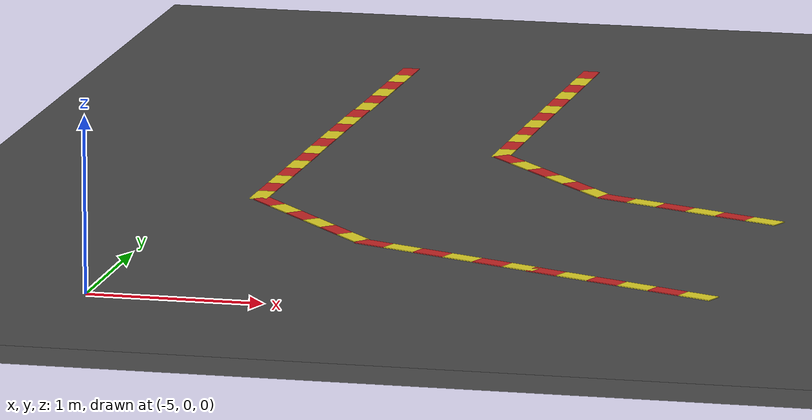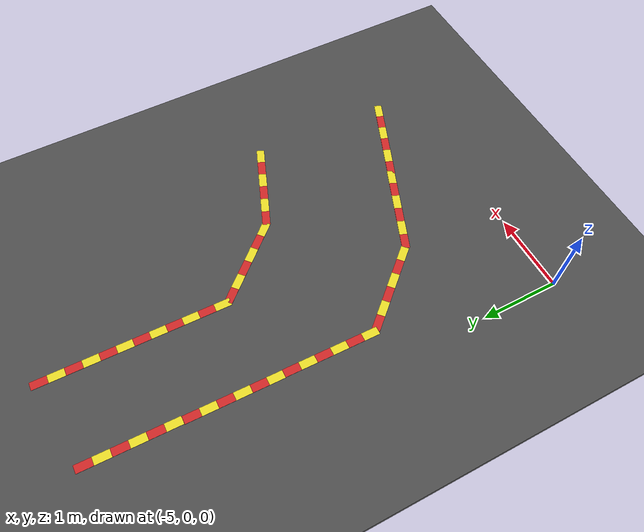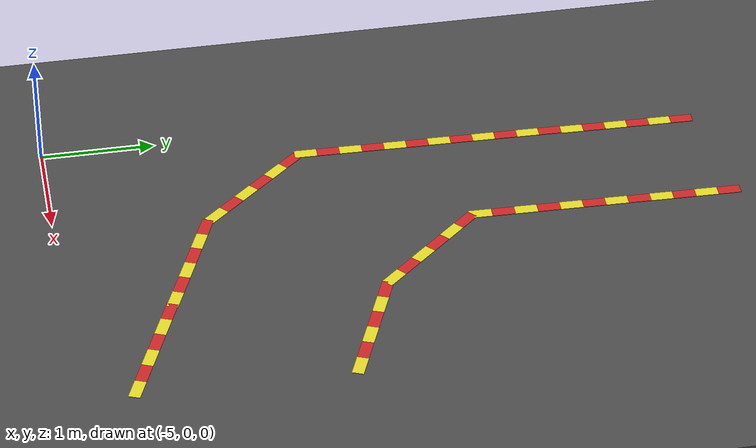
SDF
<sdf version="1.6">
 <world name="default">
  <model name="ground_plane">
   <static>1</static>
   <link name="link">
    <collision name="collision">
     <geometry><plane><normal>0 0 1</normal><size>40 40</size></plane></geometry>
     <surface><friction><ode><mu>100</mu><mu2>50</mu2></ode></friction></surface>
    </collision>
    <visual name="visual">
     <cast_shadows>0</cast_shadows>
     <geometry><plane><normal>0 0 1</normal><size>40 40</size></plane></geometry>
     <material>
      <script><uri>file://media/materials/scripts/gazebo.material</uri><name>Gazebo/Grey</name></script>
     </material>
    </visual>
    <velocity_decay><linear>0</linear><angular>0</angular></velocity_decay>
   </link>
  </model>
  <model name="asphalt_plane">
   <static>1</static>
   <link name="link">
    <collision name="collision"><geometry><box><size>40 40 0.1</size></box></geometry></collision>
    <visual name="visual">
     <cast_shadows>0</cast_shadows>
     <geometry><box><size>40 40 0.1</size></box></geometry>
     <material>
      <script>
       <uri>model://asphalt_plane/materials/scripts</uri>
       <uri>model://asphalt_plane/materials/textures</uri>
       <name>vrc/asphalt</name>
      </script>
     </material>
    </visual>
    <velocity_decay><linear>0</linear><angular>0</angular></velocity_decay>
   </link>
   <pose>0.433796 -0.497378 0 0 -0 0</pose>
  </model>
  <model name="DashLine_clone_clone_clone_12_clone_0">
   <link name="link">
    <inertial>
     <mass>1</mass>
     <inertia>
      <ixx>0.166667</ixx>
      <ixy>0</ixy>
      <ixz>0</ixz>
      <iyy>0.166667</iyy>
      <iyz>0</iyz>
      <izz>0.166667</izz>
     </inertia>
    </inertial>
    <gravity>0</gravity>
    <visual name="ModelPreview_3::link::visual_3">
     <geometry><box><size>0.2 0.1 0.01</size></box></geometry>
     <material>
      <script><name>Gazebo/Yellow</name><uri>file://media/materials/scripts/gazebo.material</uri></script>
      <shader type="vertex"><normal_map>__default__</normal_map></shader>
      <ambient>0.988 0.914 0.31 1</ambient>
      <diffuse>0.7 0.7 0.7 1</diffuse>
      <specular>0.01 0.01 0.01 1</specular>
      <emissive>0 0 0 1</emissive>
     </material>
     <pose>0.2 0 0 0 -0 0</pose>
    </visual>
    <visual name="ModelPreview_6::link::visual_5">
     <geometry><box><size>0.2 0.1 0.01</size></box></geometry>
     <material>
      <script><name>Gazebo/Yellow</name><uri>file://media/materials/scripts/gazebo.material</uri></script>
      <shader type="vertex"><normal_map>__default__</normal_map></shader>
      <ambient>0.988 0.914 0.31 1</ambient>
      <diffuse>0.7 0.7 0.7 1</diffuse>
      <specular>0.01 0.01 0.01 1</specular>
      <emissive>0 0 0 1</emissive>
     </material>
     <pose>0.6 0 0 0 -0 0</pose>
    </visual>
    <visual name="ModelPreview_3::link::visual_4">
     <geometry><box><size>0.2 0.1 0.01</size></box></geometry>
     <material>
      <script><name>Gazebo/Red</name><uri>file://media/materials/scripts/gazebo.material</uri></script>
      <shader type="vertex"><normal_map>__default__</normal_map></shader>
      <ambient>0.937 0.161 0.161 1</ambient>
      <diffuse>0.7 0.7 0.7 1</diffuse>
      <specular>0.01 0.01 0.01 1</specular>
      <emissive>0 0 0 1</emissive>
     </material>
     <pose>0.4 0 0 0 -0 0</pose>
    </visual>
    <visual name="ModelPreview_3::link::visual_2">
     <geometry><box><size>0.2 0.1 0.01</size></box></geometry>
     <material>
      <script><name>Gazebo/Red</name><uri>file://media/materials/scripts/gazebo.material</uri></script>
      <shader type="vertex"><normal_map>__default__</normal_map></shader>
      <ambient>0.937 0.161 0.161 1</ambient>
      <diffuse>0.7 0.7 0.7 1</diffuse>
      <specular>0.01 0.01 0.01 1</specular>
      <emissive>0 0 0 1</emissive>
     </material>
    </visual>
    <visual name="visual">
     <geometry><box><size>0.2 0.1 0.01</size></box></geometry>
     <material>
      <script><name>Gazebo/Red</name><uri>file://media/materials/scripts/gazebo.material</uri></script>
      <shader type="vertex"><normal_map>__default__</normal_map></shader>
      <ambient>0.8 0 0 1</ambient>
      <diffuse>0.7 0.7 0.7 1</diffuse>
      <specular>0.01 0.01 0.01 1</specular>
      <emissive>0 0 0 1</emissive>
     </material>
     <pose>-0.4 0 0 0 -0 0</pose>
    </visual>
    <visual name="ModelPreview_3::link::visual_1">
     <geometry><box><size>0.2 0.1 0.01</size></box></geometry>
     <material>
      <script><name>Gazebo/Yellow</name><uri>file://media/materials/scripts/gazebo.material</uri></script>
      <shader type="vertex"><normal_map>__default__</normal_map></shader>
      <ambient>0.988 0.914 0.31 1</ambient>
      <diffuse>0.7 0.7 0.7 1</diffuse>
      <specular>0.01 0.01 0.01 1</specular>
      <emissive>0 0 0 1</emissive>
     </material>
     <pose>-0.2 0 0 0 -0 0</pose>
    </visual>
   </link>
   <static>0</static>
   <pose>-2.23388 0.69833 0.05 0 0 -0.383062</pose>
  </model>
  <model name="DashLine_clone_clone_clone_12_clone_1">
   <link name="link">
    <inertial>
     <mass>1</mass>
     <inertia>
      <ixx>0.166667</ixx>
      <ixy>0</ixy>
      <ixz>0</ixz>
      <iyy>0.166667</iyy>
      <iyz>0</iyz>
      <izz>0.166667</izz>
     </inertia>
    </inertial>
    <gravity>0</gravity>
    <visual name="ModelPreview_3::link::visual_3">
     <geometry><box><size>0.2 0.1 0.01</size></box></geometry>
     <material>
      <script><name>Gazebo/Yellow</name><uri>file://media/materials/scripts/gazebo.material</uri></script>
      <shader type="vertex"><normal_map>__default__</normal_map></shader>
      <ambient>0.988 0.914 0.31 1</ambient>
      <diffuse>0.7 0.7 0.7 1</diffuse>
      <specular>0.01 0.01 0.01 1</specular>
      <emissive>0 0 0 1</emissive>
     </material>
     <pose>0.2 0 0 0 -0 0</pose>
    </visual>
    <visual name="ModelPreview_6::link::visual_5">
     <geometry><box><size>0.2 0.1 0.01</size></box></geometry>
     <material>
      <script><name>Gazebo/Yellow</name><uri>file://media/materials/scripts/gazebo.material</uri></script>
      <shader type="vertex"><normal_map>__default__</normal_map></shader>
      <ambient>0.988 0.914 0.31 1</ambient>
      <diffuse>0.7 0.7 0.7 1</diffuse>
      <specular>0.01 0.01 0.01 1</specular>
      <emissive>0 0 0 1</emissive>
     </material>
     <pose>0.6 0 0 0 -0 0</pose>
    </visual>
    <visual name="ModelPreview_3::link::visual_4">
     <geometry><box><size>0.2 0.1 0.01</size></box></geometry>
     <material>
      <script><name>Gazebo/Red</name><uri>file://media/materials/scripts/gazebo.material</uri></script>
      <shader type="vertex"><normal_map>__default__</normal_map></shader>
      <ambient>0.937 0.161 0.161 1</ambient>
      <diffuse>0.7 0.7 0.7 1</diffuse>
      <specular>0.01 0.01 0.01 1</specular>
      <emissive>0 0 0 1</emissive>
     </material>
     <pose>0.4 0 0 0 -0 0</pose>
    </visual>
    <visual name="ModelPreview_3::link::visual_2">
     <geometry><box><size>0.2 0.1 0.01</size></box></geometry>
     <material>
      <script><name>Gazebo/Red</name><uri>file://media/materials/scripts/gazebo.material</uri></script>
      <shader type="vertex"><normal_map>__default__</normal_map></shader>
      <ambient>0.937 0.161 0.161 1</ambient>
      <diffuse>0.7 0.7 0.7 1</diffuse>
      <specular>0.01 0.01 0.01 1</specular>
      <emissive>0 0 0 1</emissive>
     </material>
    </visual>
    <visual name="visual">
     <geometry><box><size>0.2 0.1 0.01</size></box></geometry>
     <material>
      <script><name>Gazebo/Red</name><uri>file://media/materials/scripts/gazebo.material</uri></script>
      <shader type="vertex"><normal_map>__default__</normal_map></shader>
      <ambient>0.8 0 0 1</ambient>
      <diffuse>0.7 0.7 0.7 1</diffuse>
      <specular>0.01 0.01 0.01 1</specular>
      <emissive>0 0 0 1</emissive>
     </material>
     <pose>-0.4 0 0 0 -0 0</pose>
    </visual>
    <visual name="ModelPreview_3::link::visual_1">
     <geometry><box><size>0.2 0.1 0.01</size></box></geometry>
     <material>
      <script><name>Gazebo/Yellow</name><uri>file://media/materials/scripts/gazebo.material</uri></script>
      <shader type="vertex"><normal_map>__default__</normal_map></shader>
      <ambient>0.988 0.914 0.31 1</ambient>
      <diffuse>0.7 0.7 0.7 1</diffuse>
      <specular>0.01 0.01 0.01 1</specular>
      <emissive>0 0 0 1</emissive>
     </material>
     <pose>-0.2 0 0 0 -0 0</pose>
    </visual>
   </link>
   <static>0</static>
   <pose>-3.31071 1.13876 0.05 0 0 -0.383062</pose>
  </model>
  <model name="DashLine_clone_clone_clone_12_clone_2">
   <link name="link">
    <inertial>
     <mass>1</mass>
     <inertia>
      <ixx>0.166667</ixx>
      <ixy>0</ixy>
      <ixz>0</ixz>
      <iyy>0.166667</iyy>
      <iyz>0</iyz>
      <izz>0.166667</izz>
     </inertia>
    </inertial>
    <gravity>0</gravity>
    <visual name="ModelPreview_3::link::visual_3">
     <geometry><box><size>0.2 0.1 0.01</size></box></geometry>
     <material>
      <script><name>Gazebo/Yellow</name><uri>file://media/materials/scripts/gazebo.material</uri></script>
      <shader type="vertex"><normal_map>__default__</normal_map></shader>
      <ambient>0.988 0.914 0.31 1</ambient>
      <diffuse>0.7 0.7 0.7 1</diffuse>
      <specular>0.01 0.01 0.01 1</specular>
      <emissive>0 0 0 1</emissive>
     </material>
     <pose>0.2 0 0 0 -0 0</pose>
    </visual>
    <visual name="ModelPreview_6::link::visual_5">
     <geometry><box><size>0.2 0.1 0.01</size></box></geometry>
     <material>
      <script><name>Gazebo/Yellow</name><uri>file://media/materials/scripts/gazebo.material</uri></script>
      <shader type="vertex"><normal_map>__default__</normal_map></shader>
      <ambient>0.988 0.914 0.31 1</ambient>
      <diffuse>0.7 0.7 0.7 1</diffuse>
      <specular>0.01 0.01 0.01 1</specular>
      <emissive>0 0 0 1</emissive>
     </material>
     <pose>0.6 0 0 0 -0 0</pose>
    </visual>
    <visual name="ModelPreview_3::link::visual_4">
     <geometry><box><size>0.2 0.1 0.01</size></box></geometry>
     <material>
      <script><name>Gazebo/Red</name><uri>file://media/materials/scripts/gazebo.material</uri></script>
      <shader type="vertex"><normal_map>__default__</normal_map></shader>
      <ambient>0.937 0.161 0.161 1</ambient>
      <diffuse>0.7 0.7 0.7 1</diffuse>
      <specular>0.01 0.01 0.01 1</specular>
      <emissive>0 0 0 1</emissive>
     </material>
     <pose>0.4 0 0 0 -0 0</pose>
    </visual>
    <visual name="ModelPreview_3::link::visual_2">
     <geometry><box><size>0.2 0.1 0.01</size></box></geometry>
     <material>
      <script><name>Gazebo/Red</name><uri>file://media/materials/scripts/gazebo.material</uri></script>
      <shader type="vertex"><normal_map>__default__</normal_map></shader>
      <ambient>0.937 0.161 0.161 1</ambient>
      <diffuse>0.7 0.7 0.7 1</diffuse>
      <specular>0.01 0.01 0.01 1</specular>
      <emissive>0 0 0 1</emissive>
     </material>
    </visual>
    <visual name="visual">
     <geometry><box><size>0.2 0.1 0.01</size></box></geometry>
     <material>
      <script><name>Gazebo/Red</name><uri>file://media/materials/scripts/gazebo.material</uri></script>
      <shader type="vertex"><normal_map>__default__</normal_map></shader>
      <ambient>0.8 0 0 1</ambient>
      <diffuse>0.7 0.7 0.7 1</diffuse>
      <specular>0.01 0.01 0.01 1</specular>
      <emissive>0 0 0 1</emissive>
     </material>
     <pose>-0.4 0 0 0 -0 0</pose>
    </visual>
    <visual name="ModelPreview_3::link::visual_1">
     <geometry><box><size>0.2 0.1 0.01</size></box></geometry>
     <material>
      <script><name>Gazebo/Yellow</name><uri>file://media/materials/scripts/gazebo.material</uri></script>
      <shader type="vertex"><normal_map>__default__</normal_map></shader>
      <ambient>0.988 0.914 0.31 1</ambient>
      <diffuse>0.7 0.7 0.7 1</diffuse>
      <specular>0.01 0.01 0.01 1</specular>
      <emissive>0 0 0 1</emissive>
     </material>
     <pose>-0.2 0 0 0 -0 0</pose>
    </visual>
   </link>
   <static>0</static>
   <pose>-4.22817 1.85218 0.05 0 0 -0.838988</pose>
  </model>
  <model name="DashLine_clone_clone_clone_12_clone_1_clone">
   <link name="link">
    <inertial>
     <mass>1</mass>
     <inertia>
      <ixx>0.166667</ixx>
      <ixy>0</ixy>
      <ixz>0</ixz>
      <iyy>0.166667</iyy>
      <iyz>0</iyz>
      <izz>0.166667</izz>
     </inertia>
    </inertial>
    <gravity>0</gravity>
    <visual name="ModelPreview_3::link::visual_3">
     <geometry><box><size>0.2 0.1 0.01</size></box></geometry>
     <material>
      <script><name>Gazebo/Yellow</name><uri>file://media/materials/scripts/gazebo.material</uri></script>
      <shader type="vertex"><normal_map>__default__</normal_map></shader>
      <ambient>0.988 0.914 0.31 1</ambient>
      <diffuse>0.7 0.7 0.7 1</diffuse>
      <specular>0.01 0.01 0.01 1</specular>
      <emissive>0 0 0 1</emissive>
     </material>
     <pose>0.2 0 0 0 -0 0</pose>
    </visual>
    <visual name="ModelPreview_6::link::visual_5">
     <geometry><box><size>0.2 0.1 0.01</size></box></geometry>
     <material>
      <script><name>Gazebo/Yellow</name><uri>file://media/materials/scripts/gazebo.material</uri></script>
      <shader type="vertex"><normal_map>__default__</normal_map></shader>
      <ambient>0.988 0.914 0.31 1</ambient>
      <diffuse>0.7 0.7 0.7 1</diffuse>
      <specular>0.01 0.01 0.01 1</specular>
      <emissive>0 0 0 1</emissive>
     </material>
     <pose>0.6 0 0 0 -0 0</pose>
    </visual>
    <visual name="ModelPreview_3::link::visual_4">
     <geometry><box><size>0.2 0.1 0.01</size></box></geometry>
     <material>
      <script><name>Gazebo/Red</name><uri>file://media/materials/scripts/gazebo.material</uri></script>
      <shader type="vertex"><normal_map>__default__</normal_map></shader>
      <ambient>0.937 0.161 0.161 1</ambient>
      <diffuse>0.7 0.7 0.7 1</diffuse>
      <specular>0.01 0.01 0.01 1</specular>
      <emissive>0 0 0 1</emissive>
     </material>
     <pose>0.4 0 0 0 -0 0</pose>
    </visual>
    <visual name="ModelPreview_3::link::visual_2">
     <geometry><box><size>0.2 0.1 0.01</size></box></geometry>
     <material>
      <script><name>Gazebo/Red</name><uri>file://media/materials/scripts/gazebo.material</uri></script>
      <shader type="vertex"><normal_map>__default__</normal_map></shader>
      <ambient>0.937 0.161 0.161 1</ambient>
      <diffuse>0.7 0.7 0.7 1</diffuse>
      <specular>0.01 0.01 0.01 1</specular>
      <emissive>0 0 0 1</emissive>
     </material>
    </visual>
    <visual name="visual">
     <geometry><box><size>0.2 0.1 0.01</size></box></geometry>
     <material>
      <script><name>Gazebo/Red</name><uri>file://media/materials/scripts/gazebo.material</uri></script>
      <shader type="vertex"><normal_map>__default__</normal_map></shader>
      <ambient>0.8 0 0 1</ambient>
      <diffuse>0.7 0.7 0.7 1</diffuse>
      <specular>0.01 0.01 0.01 1</specular>
      <emissive>0 0 0 1</emissive>
     </material>
     <pose>-0.4 0 0 0 -0 0</pose>
    </visual>
    <visual name="ModelPreview_3::link::visual_1">
     <geometry><box><size>0.2 0.1 0.01</size></box></geometry>
     <material>
      <script><name>Gazebo/Yellow</name><uri>file://media/materials/scripts/gazebo.material</uri></script>
      <shader type="vertex"><normal_map>__default__</normal_map></shader>
      <ambient>0.988 0.914 0.31 1</ambient>
      <diffuse>0.7 0.7 0.7 1</diffuse>
      <specular>0.01 0.01 0.01 1</specular>
      <emissive>0 0 0 1</emissive>
     </material>
     <pose>-0.2 0 0 0 -0 0</pose>
    </visual>
   </link>
   <static>0</static>
   <pose>-2.20608 2.51355 0.05 0 0 -0.383062</pose>
  </model>
  <model name="DashLine_clone_clone_clone_12_clone_2_clone">
   <link name="link">
    <inertial>
     <mass>1</mass>
     <inertia>
      <ixx>0.166667</ixx>
      <ixy>0</ixy>
      <ixz>0</ixz>
      <iyy>0.166667</iyy>
      <iyz>0</iyz>
      <izz>0.166667</izz>
     </inertia>
    </inertial>
    <gravity>0</gravity>
    <visual name="ModelPreview_3::link::visual_3">
     <geometry><box><size>0.2 0.1 0.01</size></box></geometry>
     <material>
      <script><name>Gazebo/Yellow</name><uri>file://media/materials/scripts/gazebo.material</uri></script>
      <shader type="vertex"><normal_map>__default__</normal_map></shader>
      <ambient>0.988 0.914 0.31 1</ambient>
      <diffuse>0.7 0.7 0.7 1</diffuse>
      <specular>0.01 0.01 0.01 1</specular>
      <emissive>0 0 0 1</emissive>
     </material>
     <pose>0.2 0 0 0 -0 0</pose>
    </visual>
    <visual name="ModelPreview_6::link::visual_5">
     <geometry><box><size>0.2 0.1 0.01</size></box></geometry>
     <material>
      <script><name>Gazebo/Yellow</name><uri>file://media/materials/scripts/gazebo.material</uri></script>
      <shader type="vertex"><normal_map>__default__</normal_map></shader>
      <ambient>0.988 0.914 0.31 1</ambient>
      <diffuse>0.7 0.7 0.7 1</diffuse>
      <specular>0.01 0.01 0.01 1</specular>
      <emissive>0 0 0 1</emissive>
     </material>
     <pose>0.6 0 0 0 -0 0</pose>
    </visual>
    <visual name="ModelPreview_3::link::visual_4">
     <geometry><box><size>0.2 0.1 0.01</size></box></geometry>
     <material>
      <script><name>Gazebo/Red</name><uri>file://media/materials/scripts/gazebo.material</uri></script>
      <shader type="vertex"><normal_map>__default__</normal_map></shader>
      <ambient>0.937 0.161 0.161 1</ambient>
      <diffuse>0.7 0.7 0.7 1</diffuse>
      <specular>0.01 0.01 0.01 1</specular>
      <emissive>0 0 0 1</emissive>
     </material>
     <pose>0.4 0 0 0 -0 0</pose>
    </visual>
    <visual name="ModelPreview_3::link::visual_2">
     <geometry><box><size>0.2 0.1 0.01</size></box></geometry>
     <material>
      <script><name>Gazebo/Red</name><uri>file://media/materials/scripts/gazebo.material</uri></script>
      <shader type="vertex"><normal_map>__default__</normal_map></shader>
      <ambient>0.937 0.161 0.161 1</ambient>
      <diffuse>0.7 0.7 0.7 1</diffuse>
      <specular>0.01 0.01 0.01 1</specular>
      <emissive>0 0 0 1</emissive>
     </material>
    </visual>
    <visual name="visual">
     <geometry><box><size>0.2 0.1 0.01</size></box></geometry>
     <material>
      <script><name>Gazebo/Red</name><uri>file://media/materials/scripts/gazebo.material</uri></script>
      <shader type="vertex"><normal_map>__default__</normal_map></shader>
      <ambient>0.8 0 0 1</ambient>
      <diffuse>0.7 0.7 0.7 1</diffuse>
      <specular>0.01 0.01 0.01 1</specular>
      <emissive>0 0 0 1</emissive>
     </material>
     <pose>-0.4 0 0 0 -0 0</pose>
    </visual>
    <visual name="ModelPreview_3::link::visual_1">
     <geometry><box><size>0.2 0.1 0.01</size></box></geometry>
     <material>
      <script><name>Gazebo/Yellow</name><uri>file://media/materials/scripts/gazebo.material</uri></script>
      <shader type="vertex"><normal_map>__default__</normal_map></shader>
      <ambient>0.988 0.914 0.31 1</ambient>
      <diffuse>0.7 0.7 0.7 1</diffuse>
      <specular>0.01 0.01 0.01 1</specular>
      <emissive>0 0 0 1</emissive>
     </material>
     <pose>-0.2 0 0 0 -0 0</pose>
    </visual>
   </link>
   <static>0</static>
   <pose>-3.11921 3.20962 0.05 0 0 -0.838988</pose>
  </model>
  <model name="DashLine_clone_clone_clone_12_clone_2_clone_0">
   <link name="link">
    <inertial>
     <mass>1</mass>
     <inertia>
      <ixx>0.166667</ixx>
      <ixy>0</ixy>
      <ixz>0</ixz>
      <iyy>0.166667</iyy>
      <iyz>0</iyz>
      <izz>0.166667</izz>
     </inertia>
    </inertial>
    <gravity>0</gravity>
    <visual name="ModelPreview_3::link::visual_3">
     <geometry><box><size>0.2 0.1 0.01</size></box></geometry>
     <material>
      <script><name>Gazebo/Yellow</name><uri>file://media/materials/scripts/gazebo.material</uri></script>
      <shader type="vertex"><normal_map>__default__</normal_map></shader>
      <ambient>0.988 0.914 0.31 1</ambient>
      <diffuse>0.7 0.7 0.7 1</diffuse>
      <specular>0.01 0.01 0.01 1</specular>
      <emissive>0 0 0 1</emissive>
     </material>
     <pose>0.2 0 0 0 -0 0</pose>
    </visual>
    <visual name="ModelPreview_6::link::visual_5">
     <geometry><box><size>0.2 0.1 0.01</size></box></geometry>
     <material>
      <script><name>Gazebo/Yellow</name><uri>file://media/materials/scripts/gazebo.material</uri></script>
      <shader type="vertex"><normal_map>__default__</normal_map></shader>
      <ambient>0.988 0.914 0.31 1</ambient>
      <diffuse>0.7 0.7 0.7 1</diffuse>
      <specular>0.01 0.01 0.01 1</specular>
      <emissive>0 0 0 1</emissive>
     </material>
     <pose>0.6 0 0 0 -0 0</pose>
    </visual>
    <visual name="ModelPreview_3::link::visual_4">
     <geometry><box><size>0.2 0.1 0.01</size></box></geometry>
     <material>
      <script><name>Gazebo/Red</name><uri>file://media/materials/scripts/gazebo.material</uri></script>
      <shader type="vertex"><normal_map>__default__</normal_map></shader>
      <ambient>0.937 0.161 0.161 1</ambient>
      <diffuse>0.7 0.7 0.7 1</diffuse>
      <specular>0.01 0.01 0.01 1</specular>
      <emissive>0 0 0 1</emissive>
     </material>
     <pose>0.4 0 0 0 -0 0</pose>
    </visual>
    <visual name="ModelPreview_3::link::visual_2">
     <geometry><box><size>0.2 0.1 0.01</size></box></geometry>
     <material>
      <script><name>Gazebo/Red</name><uri>file://media/materials/scripts/gazebo.material</uri></script>
      <shader type="vertex"><normal_map>__default__</normal_map></shader>
      <ambient>0.937 0.161 0.161 1</ambient>
      <diffuse>0.7 0.7 0.7 1</diffuse>
      <specular>0.01 0.01 0.01 1</specular>
      <emissive>0 0 0 1</emissive>
     </material>
    </visual>
    <visual name="visual">
     <geometry><box><size>0.2 0.1 0.01</size></box></geometry>
     <material>
      <script><name>Gazebo/Red</name><uri>file://media/materials/scripts/gazebo.material</uri></script>
      <shader type="vertex"><normal_map>__default__</normal_map></shader>
      <ambient>0.8 0 0 1</ambient>
      <diffuse>0.7 0.7 0.7 1</diffuse>
      <specular>0.01 0.01 0.01 1</specular>
      <emissive>0 0 0 1</emissive>
     </material>
     <pose>-0.4 0 0 0 -0 0</pose>
    </visual>
    <visual name="ModelPreview_3::link::visual_1">
     <geometry><box><size>0.2 0.1 0.01</size></box></geometry>
     <material>
      <script><name>Gazebo/Yellow</name><uri>file://media/materials/scripts/gazebo.material</uri></script>
      <shader type="vertex"><normal_map>__default__</normal_map></shader>
      <ambient>0.988 0.914 0.31 1</ambient>
      <diffuse>0.7 0.7 0.7 1</diffuse>
      <specular>0.01 0.01 0.01 1</specular>
      <emissive>0 0 0 1</emissive>
     </material>
     <pose>-0.2 0 0 0 -0 0</pose>
    </visual>
   </link>
   <static>0</static>
   <pose>-3.43818 4.25061 0.05 0 0 -1.59206</pose>
  </model>
  <model name="DashLine_clone_clone_clone_12_clone_2_clone_0_clone">
   <link name="link">
    <inertial>
     <mass>1</mass>
     <inertia>
      <ixx>0.166667</ixx>
      <ixy>0</ixy>
      <ixz>0</ixz>
      <iyy>0.166667</iyy>
      <iyz>0</iyz>
      <izz>0.166667</izz>
     </inertia>
    </inertial>
    <gravity>0</gravity>
    <visual name="ModelPreview_3::link::visual_3">
     <geometry><box><size>0.2 0.1 0.01</size></box></geometry>
     <material>
      <script><name>Gazebo/Yellow</name><uri>file://media/materials/scripts/gazebo.material</uri></script>
      <shader type="vertex"><normal_map>__default__</normal_map></shader>
      <ambient>0.988 0.914 0.31 1</ambient>
      <diffuse>0.7 0.7 0.7 1</diffuse>
      <specular>0.01 0.01 0.01 1</specular>
      <emissive>0 0 0 1</emissive>
     </material>
     <pose>0.2 0 0 0 -0 0</pose>
    </visual>
    <visual name="ModelPreview_6::link::visual_5">
     <geometry><box><size>0.2 0.1 0.01</size></box></geometry>
     <material>
      <script><name>Gazebo/Yellow</name><uri>file://media/materials/scripts/gazebo.material</uri></script>
      <shader type="vertex"><normal_map>__default__</normal_map></shader>
      <ambient>0.988 0.914 0.31 1</ambient>
      <diffuse>0.7 0.7 0.7 1</diffuse>
      <specular>0.01 0.01 0.01 1</specular>
      <emissive>0 0 0 1</emissive>
     </material>
     <pose>0.6 0 0 0 -0 0</pose>
    </visual>
    <visual name="ModelPreview_3::link::visual_4">
     <geometry><box><size>0.2 0.1 0.01</size></box></geometry>
     <material>
      <script><name>Gazebo/Red</name><uri>file://media/materials/scripts/gazebo.material</uri></script>
      <shader type="vertex"><normal_map>__default__</normal_map></shader>
      <ambient>0.937 0.161 0.161 1</ambient>
      <diffuse>0.7 0.7 0.7 1</diffuse>
      <specular>0.01 0.01 0.01 1</specular>
      <emissive>0 0 0 1</emissive>
     </material>
     <pose>0.4 0 0 0 -0 0</pose>
    </visual>
    <visual name="ModelPreview_3::link::visual_2">
     <geometry><box><size>0.2 0.1 0.01</size></box></geometry>
     <material>
      <script><name>Gazebo/Red</name><uri>file://media/materials/scripts/gazebo.material</uri></script>
      <shader type="vertex"><normal_map>__default__</normal_map></shader>
      <ambient>0.937 0.161 0.161 1</ambient>
      <diffuse>0.7 0.7 0.7 1</diffuse>
      <specular>0.01 0.01 0.01 1</specular>
      <emissive>0 0 0 1</emissive>
     </material>
    </visual>
    <visual name="visual">
     <geometry><box><size>0.2 0.1 0.01</size></box></geometry>
     <material>
      <script><name>Gazebo/Red</name><uri>file://media/materials/scripts/gazebo.material</uri></script>
      <shader type="vertex"><normal_map>__default__</normal_map></shader>
      <ambient>0.8 0 0 1</ambient>
      <diffuse>0.7 0.7 0.7 1</diffuse>
      <specular>0.01 0.01 0.01 1</specular>
      <emissive>0 0 0 1</emissive>
     </material>
     <pose>-0.4 0 0 0 -0 0</pose>
    </visual>
    <visual name="ModelPreview_3::link::visual_1">
     <geometry><box><size>0.2 0.1 0.01</size></box></geometry>
     <material>
      <script><name>Gazebo/Yellow</name><uri>file://media/materials/scripts/gazebo.material</uri></script>
      <shader type="vertex"><normal_map>__default__</normal_map></shader>
      <ambient>0.988 0.914 0.31 1</ambient>
      <diffuse>0.7 0.7 0.7 1</diffuse>
      <specular>0.01 0.01 0.01 1</specular>
      <emissive>0 0 0 1</emissive>
     </material>
     <pose>-0.2 0 0 0 -0 0</pose>
    </visual>
   </link>
   <static>0</static>
   <pose>-4.5609 2.90028 0.05 0 0 -1.59206</pose>
  </model>
  <model name="DashLine_clone_clone_clone_12_clone_2_clone_0_clone_0">
   <link name="link">
    <inertial>
     <mass>1</mass>
     <inertia>
      <ixx>0.166667</ixx>
      <ixy>0</ixy>
      <ixz>0</ixz>
      <iyy>0.166667</iyy>
      <iyz>0</iyz>
      <izz>0.166667</izz>
     </inertia>
    </inertial>
    <gravity>0</gravity>
    <visual name="ModelPreview_3::link::visual_3">
     <geometry><box><size>0.2 0.1 0.01</size></box></geometry>
     <material>
      <script><name>Gazebo/Yellow</name><uri>file://media/materials/scripts/gazebo.material</uri></script>
      <shader type="vertex"><normal_map>__default__</normal_map></shader>
      <ambient>0.988 0.914 0.31 1</ambient>
      <diffuse>0.7 0.7 0.7 1</diffuse>
      <specular>0.01 0.01 0.01 1</specular>
      <emissive>0 0 0 1</emissive>
     </material>
     <pose>0.2 0 0 0 -0 0</pose>
    </visual>
    <visual name="ModelPreview_6::link::visual_5">
     <geometry><box><size>0.2 0.1 0.01</size></box></geometry>
     <material>
      <script><name>Gazebo/Yellow</name><uri>file://media/materials/scripts/gazebo.material</uri></script>
      <shader type="vertex"><normal_map>__default__</normal_map></shader>
      <ambient>0.988 0.914 0.31 1</ambient>
      <diffuse>0.7 0.7 0.7 1</diffuse>
      <specular>0.01 0.01 0.01 1</specular>
      <emissive>0 0 0 1</emissive>
     </material>
     <pose>0.6 0 0 0 -0 0</pose>
    </visual>
    <visual name="ModelPreview_3::link::visual_4">
     <geometry><box><size>0.2 0.1 0.01</size></box></geometry>
     <material>
      <script><name>Gazebo/Red</name><uri>file://media/materials/scripts/gazebo.material</uri></script>
      <shader type="vertex"><normal_map>__default__</normal_map></shader>
      <ambient>0.937 0.161 0.161 1</ambient>
      <diffuse>0.7 0.7 0.7 1</diffuse>
      <specular>0.01 0.01 0.01 1</specular>
      <emissive>0 0 0 1</emissive>
     </material>
     <pose>0.4 0 0 0 -0 0</pose>
    </visual>
    <visual name="ModelPreview_3::link::visual_2">
     <geometry><box><size>0.2 0.1 0.01</size></box></geometry>
     <material>
      <script><name>Gazebo/Red</name><uri>file://media/materials/scripts/gazebo.material</uri></script>
      <shader type="vertex"><normal_map>__default__</normal_map></shader>
      <ambient>0.937 0.161 0.161 1</ambient>
      <diffuse>0.7 0.7 0.7 1</diffuse>
      <specular>0.01 0.01 0.01 1</specular>
      <emissive>0 0 0 1</emissive>
     </material>
    </visual>
    <visual name="visual">
     <geometry><box><size>0.2 0.1 0.01</size></box></geometry>
     <material>
      <script><name>Gazebo/Red</name><uri>file://media/materials/scripts/gazebo.material</uri></script>
      <shader type="vertex"><normal_map>__default__</normal_map></shader>
      <ambient>0.8 0 0 1</ambient>
      <diffuse>0.7 0.7 0.7 1</diffuse>
      <specular>0.01 0.01 0.01 1</specular>
      <emissive>0 0 0 1</emissive>
     </material>
     <pose>-0.4 0 0 0 -0 0</pose>
    </visual>
    <visual name="ModelPreview_3::link::visual_1">
     <geometry><box><size>0.2 0.1 0.01</size></box></geometry>
     <material>
      <script><name>Gazebo/Yellow</name><uri>file://media/materials/scripts/gazebo.material</uri></script>
      <shader type="vertex"><normal_map>__default__</normal_map></shader>
      <ambient>0.988 0.914 0.31 1</ambient>
      <diffuse>0.7 0.7 0.7 1</diffuse>
      <specular>0.01 0.01 0.01 1</specular>
      <emissive>0 0 0 1</emissive>
     </material>
     <pose>-0.2 0 0 0 -0 0</pose>
    </visual>
   </link>
   <static>0</static>
   <pose>-4.53886 4.09716 0.05 0 0 -1.59206</pose>
  </model>
  <model name="DashLine_clone_clone_clone_12_clone_2_clone_0_clone_1">
   <link name="link">
    <inertial>
     <mass>1</mass>
     <inertia>
      <ixx>0.166667</ixx>
      <ixy>0</ixy>
      <ixz>0</ixz>
      <iyy>0.166667</iyy>
      <iyz>0</iyz>
      <izz>0.166667</izz>
     </inertia>
    </inertial>
    <gravity>0</gravity>
    <visual name="ModelPreview_3::link::visual_3">
     <geometry><box><size>0.2 0.1 0.01</size></box></geometry>
     <material>
      <script><name>Gazebo/Yellow</name><uri>file://media/materials/scripts/gazebo.material</uri></script>
      <shader type="vertex"><normal_map>__default__</normal_map></shader>
      <ambient>0.988 0.914 0.31 1</ambient>
      <diffuse>0.7 0.7 0.7 1</diffuse>
      <specular>0.01 0.01 0.01 1</specular>
      <emissive>0 0 0 1</emissive>
     </material>
     <pose>0.2 0 0 0 -0 0</pose>
    </visual>
    <visual name="ModelPreview_6::link::visual_5">
     <geometry><box><size>0.2 0.1 0.01</size></box></geometry>
     <material>
      <script><name>Gazebo/Yellow</name><uri>file://media/materials/scripts/gazebo.material</uri></script>
      <shader type="vertex"><normal_map>__default__</normal_map></shader>
      <ambient>0.988 0.914 0.31 1</ambient>
      <diffuse>0.7 0.7 0.7 1</diffuse>
      <specular>0.01 0.01 0.01 1</specular>
      <emissive>0 0 0 1</emissive>
     </material>
     <pose>0.6 0 0 0 -0 0</pose>
    </visual>
    <visual name="ModelPreview_3::link::visual_4">
     <geometry><box><size>0.2 0.1 0.01</size></box></geometry>
     <material>
      <script><name>Gazebo/Red</name><uri>file://media/materials/scripts/gazebo.material</uri></script>
      <shader type="vertex"><normal_map>__default__</normal_map></shader>
      <ambient>0.937 0.161 0.161 1</ambient>
      <diffuse>0.7 0.7 0.7 1</diffuse>
      <specular>0.01 0.01 0.01 1</specular>
      <emissive>0 0 0 1</emissive>
     </material>
     <pose>0.4 0 0 0 -0 0</pose>
    </visual>
    <visual name="ModelPreview_3::link::visual_2">
     <geometry><box><size>0.2 0.1 0.01</size></box></geometry>
     <material>
      <script><name>Gazebo/Red</name><uri>file://media/materials/scripts/gazebo.material</uri></script>
      <shader type="vertex"><normal_map>__default__</normal_map></shader>
      <ambient>0.937 0.161 0.161 1</ambient>
      <diffuse>0.7 0.7 0.7 1</diffuse>
      <specular>0.01 0.01 0.01 1</specular>
      <emissive>0 0 0 1</emissive>
     </material>
    </visual>
    <visual name="visual">
     <geometry><box><size>0.2 0.1 0.01</size></box></geometry>
     <material>
      <script><name>Gazebo/Red</name><uri>file://media/materials/scripts/gazebo.material</uri></script>
      <shader type="vertex"><normal_map>__default__</normal_map></shader>
      <ambient>0.8 0 0 1</ambient>
      <diffuse>0.7 0.7 0.7 1</diffuse>
      <specular>0.01 0.01 0.01 1</specular>
      <emissive>0 0 0 1</emissive>
     </material>
     <pose>-0.4 0 0 0 -0 0</pose>
    </visual>
    <visual name="ModelPreview_3::link::visual_1">
     <geometry><box><size>0.2 0.1 0.01</size></box></geometry>
     <material>
      <script><name>Gazebo/Yellow</name><uri>file://media/materials/scripts/gazebo.material</uri></script>
      <shader type="vertex"><normal_map>__default__</normal_map></shader>
      <ambient>0.988 0.914 0.31 1</ambient>
      <diffuse>0.7 0.7 0.7 1</diffuse>
      <specular>0.01 0.01 0.01 1</specular>
      <emissive>0 0 0 1</emissive>
     </material>
     <pose>-0.2 0 0 0 -0 0</pose>
    </visual>
   </link>
   <static>0</static>
   <pose>-4.50664 5.29802 0.05 0 0 -1.59206</pose>
  </model>
  <model name="DashLine_clone_clone_clone_12_clone_2_clone_0_clone_2">
   <link name="link">
    <inertial>
     <mass>1</mass>
     <inertia>
      <ixx>0.166667</ixx>
      <ixy>0</ixy>
      <ixz>0</ixz>
      <iyy>0.166667</iyy>
      <iyz>0</iyz>
      <izz>0.166667</izz>
     </inertia>
    </inertial>
    <gravity>0</gravity>
    <visual name="ModelPreview_3::link::visual_3">
     <geometry><box><size>0.2 0.1 0.01</size></box></geometry>
     <material>
      <script><name>Gazebo/Yellow</name><uri>file://media/materials/scripts/gazebo.material</uri></script>
      <shader type="vertex"><normal_map>__default__</normal_map></shader>
      <ambient>0.988 0.914 0.31 1</ambient>
      <diffuse>0.7 0.7 0.7 1</diffuse>
      <specular>0.01 0.01 0.01 1</specular>
      <emissive>0 0 0 1</emissive>
     </material>
     <pose>0.2 0 0 0 -0 0</pose>
    </visual>
    <visual name="ModelPreview_6::link::visual_5">
     <geometry><box><size>0.2 0.1 0.01</size></box></geometry>
     <material>
      <script><name>Gazebo/Yellow</name><uri>file://media/materials/scripts/gazebo.material</uri></script>
      <shader type="vertex"><normal_map>__default__</normal_map></shader>
      <ambient>0.988 0.914 0.31 1</ambient>
      <diffuse>0.7 0.7 0.7 1</diffuse>
      <specular>0.01 0.01 0.01 1</specular>
      <emissive>0 0 0 1</emissive>
     </material>
     <pose>0.6 0 0 0 -0 0</pose>
    </visual>
    <visual name="ModelPreview_3::link::visual_4">
     <geometry><box><size>0.2 0.1 0.01</size></box></geometry>
     <material>
      <script><name>Gazebo/Red</name><uri>file://media/materials/scripts/gazebo.material</uri></script>
      <shader type="vertex"><normal_map>__default__</normal_map></shader>
      <ambient>0.937 0.161 0.161 1</ambient>
      <diffuse>0.7 0.7 0.7 1</diffuse>
      <specular>0.01 0.01 0.01 1</specular>
      <emissive>0 0 0 1</emissive>
     </material>
     <pose>0.4 0 0 0 -0 0</pose>
    </visual>
    <visual name="ModelPreview_3::link::visual_2">
     <geometry><box><size>0.2 0.1 0.01</size></box></geometry>
     <material>
      <script><name>Gazebo/Red</name><uri>file://media/materials/scripts/gazebo.material</uri></script>
      <shader type="vertex"><normal_map>__default__</normal_map></shader>
      <ambient>0.937 0.161 0.161 1</ambient>
      <diffuse>0.7 0.7 0.7 1</diffuse>
      <specular>0.01 0.01 0.01 1</specular>
      <emissive>0 0 0 1</emissive>
     </material>
    </visual>
    <visual name="visual">
     <geometry><box><size>0.2 0.1 0.01</size></box></geometry>
     <material>
      <script><name>Gazebo/Red</name><uri>file://media/materials/scripts/gazebo.material</uri></script>
      <shader type="vertex"><normal_map>__default__</normal_map></shader>
      <ambient>0.8 0 0 1</ambient>
      <diffuse>0.7 0.7 0.7 1</diffuse>
      <specular>0.01 0.01 0.01 1</specular>
      <emissive>0 0 0 1</emissive>
     </material>
     <pose>-0.4 0 0 0 -0 0</pose>
    </visual>
    <visual name="ModelPreview_3::link::visual_1">
     <geometry><box><size>0.2 0.1 0.01</size></box></geometry>
     <material>
      <script><name>Gazebo/Yellow</name><uri>file://media/materials/scripts/gazebo.material</uri></script>
      <shader type="vertex"><normal_map>__default__</normal_map></shader>
      <ambient>0.988 0.914 0.31 1</ambient>
      <diffuse>0.7 0.7 0.7 1</diffuse>
      <specular>0.01 0.01 0.01 1</specular>
      <emissive>0 0 0 1</emissive>
     </material>
     <pose>-0.2 0 0 0 -0 0</pose>
    </visual>
   </link>
   <static>0</static>
   <pose>-3.41244 5.44939 0.05 0 0 -1.59206</pose>
  </model>
 </world>
</sdf>
